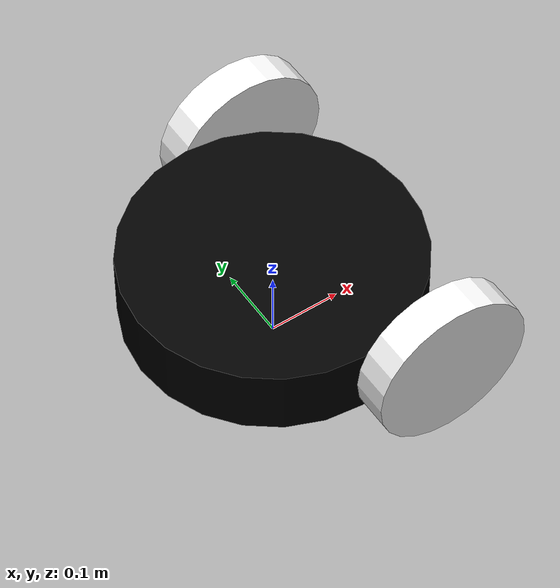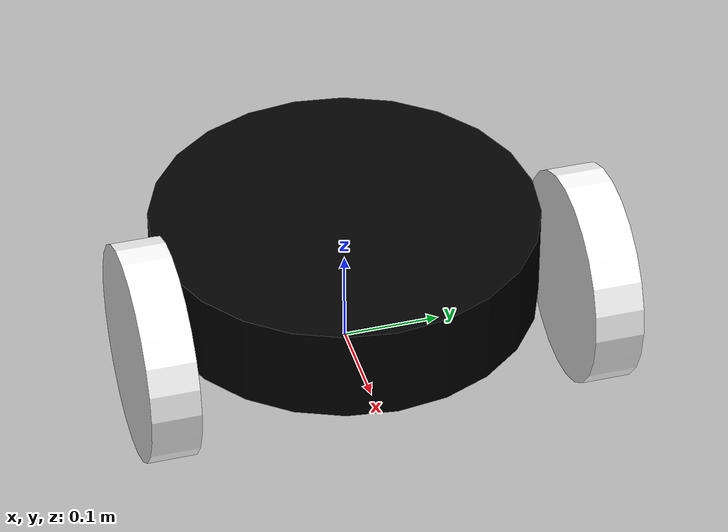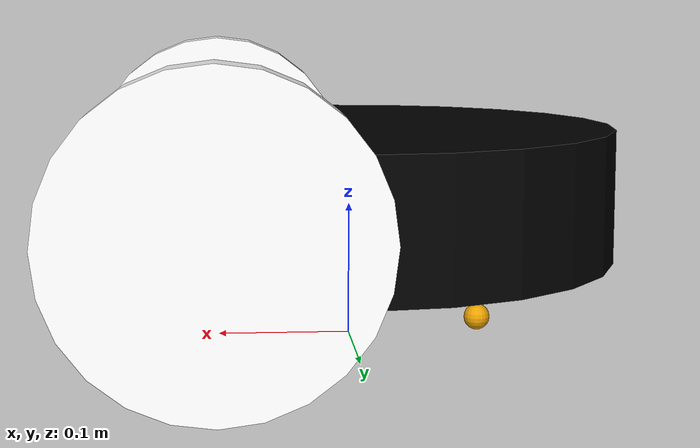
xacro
<?xml version='1.0'?>

<robot name="box_2wheel_base" xmlns:xacro="http://www.ros.org/wiki/xacro">

  <xacro:property name="chassis_x" value="0.4"/>
  <xacro:property name="chassis_y" value="0.2"/>
  <xacro:property name="chassis_z" value="0.1"/>
  <xacro:property name="wheel_length" value="0.05"/>
  <xacro:property name="wheel_radius" value="0.11"/>

  <xacro:include filename="$(find urdf_dev)/macros.xacro"/>
  <xacro:include filename="$(find urdf_dev)/box_2wheel_base/box_2wheel_base.gazebo"/>

  <!-- prefix:left reflect:-1 -->
  <xacro:macro name="wheel" params="prefix reflect">
    <link name="${prefix}_wheel">
      <visual>
        <geometry>
          <cylinder length="${wheel_length}" radius="${wheel_radius}"/>
        </geometry>
        <!-- relative to joint frame -->
        <origin xyz="0 ${reflect*wheel_length/2} 0" rpy="1.5707 0 0"/>
        <material name="white"/>
      </visual>
      <collision>
        <geometry>
          <cylinder length="${wheel_length}" radius="${wheel_radius}"/>
        </geometry>
        <origin xyz="0 ${reflect*wheel_length/2} 0" rpy="1.5707 0 0"/>
      </collision>
      <xacro:cylinder_inertial m="${3.14*wheel_radius*wheel_radius*wheel_length}" r="${wheel_radius}" l="${wheel_length}">
        <origin xyz="0 ${reflect*wheel_length/2} 0" rpy="1.5707 0 0"/>
      </xacro:cylinder_inertial>
    </link>

    <joint name="chassis_${prefix}_joint" type="continuous">
      <parent link="chassis"/>
      <child link="${prefix}_wheel"/>
      <origin xyz="${chassis_x/4} ${reflect*chassis_y} ${wheel_radius}"/>
      <axis xyz="0 1 0" rpy="0 0 0"/>
      <!--limit effort="10000" velocity="1000"/-->
      <!--joint_properties damping="1.0" friction="1.0"/-->
    </joint>
  </xacro:macro>

  <link name="chassis">
    <visual>
      <geometry>
        <cylinder length="${chassis_z}" radius="${chassis_y}"/>
      </geometry>
      <origin xyz="0 0 ${wheel_radius}" rpy="0 0 0"/>
      <material name="black"/>
    </visual>
    <collision>
      <geometry>
        <cylinder length="${chassis_z}" radius="${chassis_y}"/>
      </geometry>
      <origin xyz="0 0 ${wheel_radius}" rpy="0 0 0"/>
    </collision>
    <xacro:cylinder_inertial m="${3.14*chassis_y*chassis_y*chassis_z}" r="${chassis_y}" l="${chassis_z}">
      <origin xyz="0 0 ${wheel_radius}" rpy="0 0 0"/>
    </xacro:cylinder_inertial>

    <visual>
      <geometry>
        <sphere radius="${wheel_radius-chassis_z}"/>
      </geometry>
      <origin xyz="${-chassis_x/4} 0 ${wheel_radius-chassis_z}" rpy="0 0 0"/>
    </visual>
    <collision>
      <geometry>
        <sphere radius="${wheel_radius/2}"/>
      </geometry>
      <origin xyz="${-chassis_x/4} 0 ${wheel_radius-chassis_z}" rpy="0 0 0"/>
      <surface>
        <friction>
          <ode>
            <mu>0</mu>
            <mu2>0</mu2>
            <slip1>1.0</slip1>
            <slip2>1.0</slip2>
          </ode>
        </friction>
      </surface>
    </collision>
    <!-- 0.523599 ~= pi * 4/3 / 8 -->
    <xacro:sphere_inertial m="${0.523599*wheel_radius*wheel_radius*wheel_radius}" r="${wheel_radius/2}">
      <origin xyz="${-chassis_x/4} 0 ${wheel_radius-chassis_z}" rpy="0 0 0"/>
    </xacro:sphere_inertial>
  </link>

  <xacro:wheel prefix="left" reflect="-1"/>
  <xacro:wheel prefix="right" reflect="1"/>

</robot>

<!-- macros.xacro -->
<robot xmlns:xacro="http://www.ros.org/wiki/xacro">
  <material name="black">
    <color rgba="0.0 0.0 0.0 1.0"/>
  </material>

  <material name="white">
    <color rgba="1.0 1.0 1.0 1.0"/>
  </material>

  <xacro:macro name="cylinder_inertial" params="m r l *origin">
    <inertial>
      <xacro:insert_block name="origin"/>
      <mass value="${m}"/>
      <inertia ixx="${m*(3*r*r+l*l)/12}" ixy="0" ixz="0" iyy="${m*(3*r*r+l*l)/12}" iyz="0" izz="${m*r*r/2}"/>
    </inertial>
  </xacro:macro>

  <xacro:macro name="box_inertial" params="m x y z *origin">
    <inertial>
      <xacro:insert_block name="origin"/>
      <mass value="${m}"/>
      <inertia  ixx="${m*(y*y+z*z)/12}" ixy="0" ixz="0" iyy="${m*(x*x+z*z)/12}" iyz="0" izz="${m*(x*x+z*z)/12}"/>
    </inertial>
  </xacro:macro>

  <xacro:macro name="sphere_inertial" params="m r *origin">
    <inertial>
      <xacro:insert_block name="origin"/>
      <mass value="${m}"/>
      <inertia ixx="${2*m*r*r/5}" ixy="0" ixz="0" iyy="${2*m*r*r/5}" iyz="0" izz="${2*m*r*r/5}"/>
    </inertial>
  </xacro:macro>
</robot>
